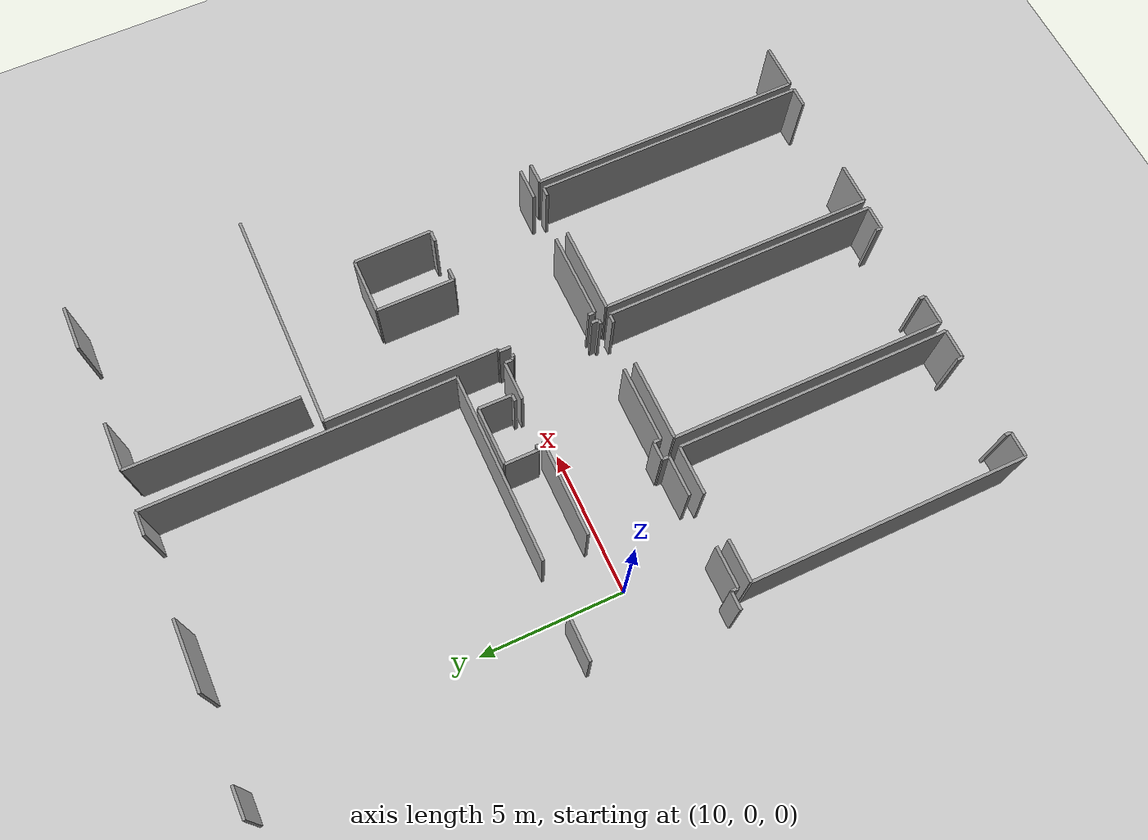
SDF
<sdf version="1.6">
 <world name="default">
  <model name="ground_plane">
   <static>1</static>
   <link name="link">
    <collision name="collision">
     <geometry><plane><normal>0 0 1</normal><size>100 100</size></plane></geometry>
     <surface><friction><ode><mu>100</mu><mu2>50</mu2></ode></friction></surface>
    </collision>
    <visual name="visual">
     <cast_shadows>0</cast_shadows>
     <geometry><plane><normal>0 0 1</normal><size>100 100</size></plane></geometry>
     <material>
      <script><uri>file://media/materials/scripts/gazebo.material</uri><name>Gazebo/Grey</name></script>
     </material>
    </visual>
   </link>
  </model>
  <model name="0510030968_A-40">
   <static>1</static>
   <link name="Wall_44">
    <collision name="Wall_44_Collision">
     <geometry><box><size>3.30614733793 0.1 2.5</size></box></geometry>
     <pose>1.65307366897 0 1.25 0 0 0</pose>
    </collision>
    <visual name="Wall_44_Visual">
     <pose>1.65307366897 0 1.25 0 0 0</pose>
     <geometry><box><size>3.30614733793 0.1 2.5</size></box></geometry>
     <material>
      <script><uri>file://media/materials/scripts/gazebo.material</uri><name>Gazebo/Grey</name></script>
      <ambient>1 1 1 1</ambient>
     </material>
    </visual>
    <pose>50.3161959932 -12.2775258203 0 0 0 0.0</pose>
   </link>
   <link name="Wall_45">
    <collision name="Wall_45_Collision">
     <geometry><box><size>1.36196755466 0.1 2.5</size></box></geometry>
     <pose>0.680983777329 0 1.25 0 0 0</pose>
    </collision>
    <visual name="Wall_45_Visual">
     <pose>0.680983777329 0 1.25 0 0 0</pose>
     <geometry><box><size>1.36196755466 0.1 2.5</size></box></geometry>
     <material>
      <script><uri>file://media/materials/scripts/gazebo.material</uri><name>Gazebo/Grey</name></script>
      <ambient>1 1 1 1</ambient>
     </material>
    </visual>
    <pose>55.198622915 -12.2775258203 0 0 0 0.0</pose>
   </link>
   <link name="Wall_46">
    <collision name="Wall_46_Collision">
     <geometry><box><size>0.280625531969 0.1 2.5</size></box></geometry>
     <pose>0.140312765984 0 1.25 0 0 0</pose>
    </collision>
    <visual name="Wall_46_Visual">
     <pose>0.140312765984 0 1.25 0 0 0</pose>
     <geometry><box><size>0.280625531969 0.1 2.5</size></box></geometry>
     <material>
      <script><uri>file://media/materials/scripts/gazebo.material</uri><name>Gazebo/Grey</name></script>
      <ambient>1 1 1 1</ambient>
     </material>
    </visual>
    <pose>56.5605904697 -12.2775258203 0 0 0 -1.57079632679</pose>
   </link>
   <link name="Wall_47">
    <collision name="Wall_47_Collision">
     <geometry><box><size>0.137327387985 0.1 2.5</size></box></geometry>
     <pose>0.0686636939924 0 1.25 0 0 0</pose>
    </collision>
    <visual name="Wall_47_Visual">
     <pose>0.0686636939924 0 1.25 0 0 0</pose>
     <geometry><box><size>0.137327387985 0.1 2.5</size></box></geometry>
     <material>
      <script><uri>file://media/materials/scripts/gazebo.material</uri><name>Gazebo/Grey</name></script>
      <ambient>1 1 1 1</ambient>
     </material>
    </visual>
    <pose>56.5605904697 -12.5581513523 0 0 0 0.0</pose>
   </link>
   <link name="Wall_48">
    <collision name="Wall_48_Collision">
     <geometry><box><size>0.10988731786 0.1 2.5</size></box></geometry>
     <pose>0.0549436589301 0 1.25 0 0 0</pose>
    </collision>
    <visual name="Wall_48_Visual">
     <pose>0.0549436589301 0 1.25 0 0 0</pose>
     <geometry><box><size>0.10988731786 0.1 2.5</size></box></geometry>
     <material>
      <script><uri>file://media/materials/scripts/gazebo.material</uri><name>Gazebo/Grey</name></script>
      <ambient>1 1 1 1</ambient>
     </material>
    </visual>
    <pose>56.6979178576 -12.5581513523 0 0 0 -1.57079632679</pose>
   </link>
   <link name="Wall_49">
    <collision name="Wall_49_Collision">
     <geometry><box><size>0.251025826696 0.1 2.5</size></box></geometry>
     <pose>0.125512913348 0 1.25 0 0 0</pose>
    </collision>
    <visual name="Wall_49_Visual">
     <pose>0.125512913348 0 1.25 0 0 0</pose>
     <geometry><box><size>0.251025826696 0.1 2.5</size></box></geometry>
     <material>
      <script><uri>file://media/materials/scripts/gazebo.material</uri><name>Gazebo/Grey</name></script>
      <ambient>1 1 1 1</ambient>
     </material>
    </visual>
    <pose>56.6979178576 -15.4015015816 0 0 0 -1.57079632679</pose>
   </link>
   <link name="Wall_50">
    <collision name="Wall_50_Collision">
     <geometry><box><size>0.156001880153 0.1 2.5</size></box></geometry>
     <pose>0.0780009400765 0 1.25 0 0 0</pose>
    </collision>
    <visual name="Wall_50_Visual">
     <pose>0.0780009400765 0 1.25 0 0 0</pose>
     <geometry><box><size>0.156001880153 0.1 2.5</size></box></geometry>
     <material>
      <script><uri>file://media/materials/scripts/gazebo.material</uri><name>Gazebo/Grey</name></script>
      <ambient>1 1 1 1</ambient>
     </material>
    </visual>
    <pose>56.6979178576 -15.6525274083 0 0 0 3.14159265359</pose>
   </link>
   <link name="Wall_51">
    <collision name="Wall_51_Collision">
     <geometry><box><size>2.60718777392 0.1 2.5</size></box></geometry>
     <pose>1.30359388696 0 1.25 0 0 0</pose>
    </collision>
    <visual name="Wall_51_Visual">
     <pose>1.30359388696 0 1.25 0 0 0</pose>
     <geometry><box><size>2.60718777392 0.1 2.5</size></box></geometry>
     <material>
      <script><uri>file://media/materials/scripts/gazebo.material</uri><name>Gazebo/Grey</name></script>
      <ambient>1 1 1 1</ambient>
     </material>
    </visual>
    <pose>54.7851163027 -15.6525274083 0 0 0 3.14159265359</pose>
   </link>
   <link name="Wall_52">
    <collision name="Wall_52_Collision">
     <geometry><box><size>0.252677312398 0.1 2.5</size></box></geometry>
     <pose>0.126338656199 0 1.25 0 0 0</pose>
    </collision>
    <visual name="Wall_52_Visual">
     <pose>0.126338656199 0 1.25 0 0 0</pose>
     <geometry><box><size>0.252677312398 0.1 2.5</size></box></geometry>
     <material>
      <script><uri>file://media/materials/scripts/gazebo.material</uri><name>Gazebo/Grey</name></script>
      <ambient>1 1 1 1</ambient>
     </material>
    </visual>
    <pose>52.1779285288 -15.6525274083 0 0 0 1.57079632679</pose>
   </link>
   <link name="Wall_53">
    <collision name="Wall_53_Collision">
     <geometry><box><size>0.619053063506 0.1 2.5</size></box></geometry>
     <pose>0.309526531753 0 1.25 0 0 0</pose>
    </collision>
    <visual name="Wall_53_Visual">
     <pose>0.309526531753 0 1.25 0 0 0</pose>
     <geometry><box><size>0.619053063506 0.1 2.5</size></box></geometry>
     <material>
      <script><uri>file://media/materials/scripts/gazebo.material</uri><name>Gazebo/Grey</name></script>
      <ambient>1 1 1 1</ambient>
     </material>
    </visual>
    <pose>52.1779285288 -15.3998500959 0 0 0 3.14159265359</pose>
   </link>
   <link name="Wall_54">
    <collision name="Wall_54_Collision">
     <geometry><box><size>0.233748745506 0.1 2.5</size></box></geometry>
     <pose>0.116874372753 0 1.25 0 0 0</pose>
    </collision>
    <visual name="Wall_54_Visual">
     <pose>0.116874372753 0 1.25 0 0 0</pose>
     <geometry><box><size>0.233748745506 0.1 2.5</size></box></geometry>
     <material>
      <script><uri>file://media/materials/scripts/gazebo.material</uri><name>Gazebo/Grey</name></script>
      <ambient>1 1 1 1</ambient>
     </material>
    </visual>
    <pose>51.5588754653 -15.3998500959 0 0 0 -1.57079632679</pose>
   </link>
   <link name="Wall_55">
    <collision name="Wall_55_Collision">
     <geometry><box><size>1.40211136095 0.1 2.5</size></box></geometry>
     <pose>0.701055680476 0 1.25 0 0 0</pose>
    </collision>
    <visual name="Wall_55_Visual">
     <pose>0.701055680476 0 1.25 0 0 0</pose>
     <geometry><box><size>1.40211136095 0.1 2.5</size></box></geometry>
     <material>
      <script><uri>file://media/materials/scripts/gazebo.material</uri><name>Gazebo/Grey</name></script>
      <ambient>1 1 1 1</ambient>
     </material>
    </visual>
    <pose>51.5588754653 -15.6335988414 0 0 0 3.14159265359</pose>
   </link>
   <link name="Wall_56">
    <collision name="Wall_56_Collision">
     <geometry><box><size>1.40249247304 0.1 2.5</size></box></geometry>
     <pose>0.701246236518 0 1.25 0 0 0</pose>
    </collision>
    <visual name="Wall_56_Visual">
     <pose>0.701246236518 0 1.25 0 0 0</pose>
     <geometry><box><size>1.40249247304 0.1 2.5</size></box></geometry>
     <material>
      <script><uri>file://media/materials/scripts/gazebo.material</uri><name>Gazebo/Grey</name></script>
      <ambient>1 1 1 1</ambient>
     </material>
    </visual>
    <pose>48.3854821703 -15.6335988414 0 0 0 3.14159265359</pose>
   </link>
   <link name="Wall_57">
    <collision name="Wall_57_Collision">
     <geometry><box><size>0.231589110357 0.1 2.5</size></box></geometry>
     <pose>0.115794555179 0 1.25 0 0 0</pose>
    </collision>
    <visual name="Wall_57_Visual">
     <pose>0.115794555179 0 1.25 0 0 0</pose>
     <geometry><box><size>0.231589110357 0.1 2.5</size></box></geometry>
     <material>
      <script><uri>file://media/materials/scripts/gazebo.material</uri><name>Gazebo/Grey</name></script>
      <ambient>1 1 1 1</ambient>
     </material>
    </visual>
    <pose>46.9829896973 -15.6335988414 0 0 0 1.57079632679</pose>
   </link>
   <link name="Wall_58">
    <collision name="Wall_58_Collision">
     <geometry><box><size>0.628453828271 0.1 2.5</size></box></geometry>
     <pose>0.314226914135 0 1.25 0 0 0</pose>
    </collision>
    <visual name="Wall_58_Visual">
     <pose>0.314226914135 0 1.25 0 0 0</pose>
     <geometry><box><size>0.628453828271 0.1 2.5</size></box></geometry>
     <material>
      <script><uri>file://media/materials/scripts/gazebo.material</uri><name>Gazebo/Grey</name></script>
      <ambient>1 1 1 1</ambient>
     </material>
    </visual>
    <pose>46.9829896973 -15.4020097311 0 0 0 3.14159265359</pose>
   </link>
   <link name="Wall_166">
    <collision name="Wall_166_Collision">
     <geometry><box><size>1.03205152635 0.1 2.5</size></box></geometry>
     <pose>0.516025763177 0 1.25 0 0 0</pose>
    </collision>
    <visual name="Wall_166_Visual">
     <pose>0.516025763177 0 1.25 0 0 0</pose>
     <geometry><box><size>1.03205152635 0.1 2.5</size></box></geometry>
     <material>
      <script><uri>file://media/materials/scripts/gazebo.material</uri><name>Gazebo/Grey</name></script>
      <ambient>1 1 1 1</ambient>
     </material>
    </visual>
    <pose>51.7197047652 -25.694576775 0 0 0 3.14159265359</pose>
   </link>
   <link name="Wall_167">
    <collision name="Wall_167_Collision">
     <geometry><box><size>0.20021088202 0.1 2.5</size></box></geometry>
     <pose>0.10010544101 0 1.25 0 0 0</pose>
    </collision>
    <visual name="Wall_167_Visual">
     <pose>0.10010544101 0 1.25 0 0 0</pose>
     <geometry><box><size>0.20021088202 0.1 2.5</size></box></geometry>
     <material>
      <script><uri>file://media/materials/scripts/gazebo.material</uri><name>Gazebo/Grey</name></script>
      <ambient>1 1 1 1</ambient>
     </material>
    </visual>
    <pose>50.6876532388 -25.694576775 0 0 0 1.57079632679</pose>
   </link>
   <link name="Wall_168">
    <collision name="Wall_168_Collision">
     <geometry><box><size>0.210627945679 0.1 2.5</size></box></geometry>
     <pose>0.105313972839 0 1.25 0 0 0</pose>
    </collision>
    <visual name="Wall_168_Visual">
     <pose>0.105313972839 0 1.25 0 0 0</pose>
     <geometry><box><size>0.210627945679 0.1 2.5</size></box></geometry>
     <material>
      <script><uri>file://media/materials/scripts/gazebo.material</uri><name>Gazebo/Grey</name></script>
      <ambient>1 1 1 1</ambient>
     </material>
    </visual>
    <pose>47.8548471105 -25.494365893 0 0 0 -1.57079632679</pose>
   </link>
   <link name="Wall_169">
    <collision name="Wall_169_Collision">
     <geometry><box><size>0.871603338542 0.1 2.5</size></box></geometry>
     <pose>0.435801669271 0 1.25 0 0 0</pose>
    </collision>
    <visual name="Wall_169_Visual">
     <pose>0.435801669271 0 1.25 0 0 0</pose>
     <geometry><box><size>0.871603338542 0.1 2.5</size></box></geometry>
     <material>
      <script><uri>file://media/materials/scripts/gazebo.material</uri><name>Gazebo/Grey</name></script>
      <ambient>1 1 1 1</ambient>
     </material>
    </visual>
    <pose>47.8548471105 -25.7049938387 0 0 0 3.14159265359</pose>
   </link>
   <link name="Wall_170">
    <collision name="Wall_170_Collision">
     <geometry><box><size>9.63565684668 0.1 2.5</size></box></geometry>
     <pose>4.81782842334 0 1.25 0 0 0</pose>
    </collision>
    <visual name="Wall_170_Visual">
     <pose>4.81782842334 0 1.25 0 0 0</pose>
     <geometry><box><size>9.63565684668 0.1 2.5</size></box></geometry>
     <material>
      <script><uri>file://media/materials/scripts/gazebo.material</uri><name>Gazebo/Grey</name></script>
      <ambient>1 1 1 1</ambient>
     </material>
    </visual>
    <pose>46.983243772 -25.7049938387 0 0 0 1.57079632679</pose>
   </link>
   <link name="Wall_171">
    <collision name="Wall_171_Collision">
     <geometry><box><size>1.44924222214 0.1 2.5</size></box></geometry>
     <pose>0.724621111069 0 1.25 0 0 0</pose>
    </collision>
    <visual name="Wall_171_Visual">
     <pose>0.724621111069 0 1.25 0 0 0</pose>
     <geometry><box><size>1.44924222214 0.1 2.5</size></box></geometry>
     <material>
      <script><uri>file://media/materials/scripts/gazebo.material</uri><name>Gazebo/Grey</name></script>
      <ambient>1 1 1 1</ambient>
     </material>
    </visual>
    <pose>46.983243772 -16.069336992 0 0 0 0.0</pose>
   </link>
   <link name="Wall_172">
    <collision name="Wall_172_Collision">
     <geometry><box><size>1.69061320934 0.1 2.5</size></box></geometry>
     <pose>0.845306604672 0 1.25 0 0 0</pose>
    </collision>
    <visual name="Wall_172_Visual">
     <pose>0.845306604672 0 1.25 0 0 0</pose>
     <geometry><box><size>1.69061320934 0.1 2.5</size></box></geometry>
     <material>
      <script><uri>file://media/materials/scripts/gazebo.material</uri><name>Gazebo/Grey</name></script>
      <ambient>1 1 1 1</ambient>
     </material>
    </visual>
    <pose>50.0184204174 -16.069336992 0 0 0 0.0</pose>
   </link>
   <link name="Wall_173">
    <collision name="Wall_173_Collision">
     <geometry><box><size>9.62524569836 0.1 2.5</size></box></geometry>
     <pose>4.81262284918 0 1.25 0 0 0</pose>
    </collision>
    <visual name="Wall_173_Visual">
     <pose>4.81262284918 0 1.25 0 0 0</pose>
     <geometry><box><size>9.62524569836 0.1 2.5</size></box></geometry>
     <material>
      <script><uri>file://media/materials/scripts/gazebo.material</uri><name>Gazebo/Grey</name></script>
      <ambient>1 1 1 1</ambient>
     </material>
    </visual>
    <pose>51.7090336268 -16.069336992 0 0 0 -1.56968766517</pose>
   </link>
   <link name="Wall_174">
    <collision name="Wall_174_Collision">
     <geometry><box><size>0.859534789181 0.1 2.5</size></box></geometry>
     <pose>0.429767394591 0 1.25 0 0 0</pose>
    </collision>
    <visual name="Wall_174_Visual">
     <pose>0.429767394591 0 1.25 0 0 0</pose>
     <geometry><box><size>0.859534789181 0.1 2.5</size></box></geometry>
     <material>
      <script><uri>file://media/materials/scripts/gazebo.material</uri><name>Gazebo/Grey</name></script>
      <ambient>1 1 1 1</ambient>
     </material>
    </visual>
    <pose>56.7238334794 -25.716681276 0 0 0 3.14159265359</pose>
   </link>
   <link name="Wall_175">
    <collision name="Wall_175_Collision">
     <geometry><box><size>0.199702732574 0.1 2.5</size></box></geometry>
     <pose>0.0998513662868 0 1.25 0 0 0</pose>
    </collision>
    <visual name="Wall_175_Visual">
     <pose>0.0998513662868 0 1.25 0 0 0</pose>
     <geometry><box><size>0.199702732574 0.1 2.5</size></box></geometry>
     <material>
      <script><uri>file://media/materials/scripts/gazebo.material</uri><name>Gazebo/Grey</name></script>
      <ambient>1 1 1 1</ambient>
     </material>
    </visual>
    <pose>55.8642986902 -25.716681276 0 0 0 1.57079632679</pose>
   </link>
   <link name="Wall_176">
    <collision name="Wall_176_Collision">
     <geometry><box><size>0.192080490872 0.1 2.5</size></box></geometry>
     <pose>0.0960402454362 0 1.25 0 0 0</pose>
    </collision>
    <visual name="Wall_176_Visual">
     <pose>0.0960402454362 0 1.25 0 0 0</pose>
     <geometry><box><size>0.192080490872 0.1 2.5</size></box></geometry>
     <material>
      <script><uri>file://media/materials/scripts/gazebo.material</uri><name>Gazebo/Grey</name></script>
      <ambient>1 1 1 1</ambient>
     </material>
    </visual>
    <pose>53.0660467243 -25.5169785434 0 0 0 -1.57079632679</pose>
   </link>
   <link name="Wall_177">
    <collision name="Wall_177_Collision">
     <geometry><box><size>1.01909371546 0.1 2.5</size></box></geometry>
     <pose>0.509546857731 0 1.25 0 0 0</pose>
    </collision>
    <visual name="Wall_177_Visual">
     <pose>0.509546857731 0 1.25 0 0 0</pose>
     <geometry><box><size>1.01909371546 0.1 2.5</size></box></geometry>
     <material>
      <script><uri>file://media/materials/scripts/gazebo.material</uri><name>Gazebo/Grey</name></script>
      <ambient>1 1 1 1</ambient>
     </material>
    </visual>
    <pose>53.0660467243 -25.7090590343 0 0 0 3.14159265359</pose>
   </link>
   <link name="Wall_178">
    <collision name="Wall_178_Collision">
     <geometry><box><size>9.64607391034 0.1 2.5</size></box></geometry>
     <pose>4.82303695517 0 1.25 0 0 0</pose>
    </collision>
    <visual name="Wall_178_Visual">
     <pose>4.82303695517 0 1.25 0 0 0</pose>
     <geometry><box><size>9.64607391034 0.1 2.5</size></box></geometry>
     <material>
      <script><uri>file://media/materials/scripts/gazebo.material</uri><name>Gazebo/Grey</name></script>
      <ambient>1 1 1 1</ambient>
     </material>
    </visual>
    <pose>52.0469530089 -25.7090590343 0 0 0 1.57079632679</pose>
   </link>
   <link name="Wall_179">
    <collision name="Wall_179_Collision">
     <geometry><box><size>2.79621936812 0.1 2.5</size></box></geometry>
     <pose>1.39810968406 0 1.25 0 0 0</pose>
    </collision>
    <visual name="Wall_179_Visual">
     <pose>1.39810968406 0 1.25 0 0 0</pose>
     <geometry><box><size>2.79621936812 0.1 2.5</size></box></geometry>
     <material>
      <script><uri>file://media/materials/scripts/gazebo.material</uri><name>Gazebo/Grey</name></script>
      <ambient>1 1 1 1</ambient>
     </material>
    </visual>
    <pose>52.0469530089 -16.0629851239 0 0 0 0.0</pose>
   </link>
   <link name="Wall_180">
    <collision name="Wall_180_Collision">
     <geometry><box><size>0.317466366858 0.1 2.5</size></box></geometry>
     <pose>0.158733183429 0 1.25 0 0 0</pose>
    </collision>
    <visual name="Wall_180_Visual">
     <pose>0.158733183429 0 1.25 0 0 0</pose>
     <geometry><box><size>0.317466366858 0.1 2.5</size></box></geometry>
     <material>
      <script><uri>file://media/materials/scripts/gazebo.material</uri><name>Gazebo/Grey</name></script>
      <ambient>1 1 1 1</ambient>
     </material>
    </visual>
    <pose>56.4155138026 -16.0629851239 0 0 0 0.0</pose>
   </link>
   <link name="Wall_181">
    <collision name="Wall_181_Collision">
     <geometry><box><size>9.65370048519 0.1 2.5</size></box></geometry>
     <pose>4.8268502426 0 1.25 0 0 0</pose>
    </collision>
    <visual name="Wall_181_Visual">
     <pose>4.8268502426 0 1.25 0 0 0</pose>
     <geometry><box><size>9.65370048519 0.1 2.5</size></box></geometry>
     <material>
      <script><uri>file://media/materials/scripts/gazebo.material</uri><name>Gazebo/Grey</name></script>
      <ambient>1 1 1 1</ambient>
     </material>
    </visual>
    <pose>56.7329801695 -16.0629851239 0 0 0 -1.57174380713</pose>
   </link>
   <link name="Wall_211">
    <collision name="Wall_211_Collision">
     <geometry><box><size>6.60848355501 0.1 2.5</size></box></geometry>
     <pose>3.30424177751 0 1.25 0 0 0</pose>
    </collision>
    <visual name="Wall_211_Visual">
     <pose>3.30424177751 0 1.25 0 0 0</pose>
     <geometry><box><size>6.60848355501 0.1 2.5</size></box></geometry>
     <material>
      <script><uri>file://media/materials/scripts/gazebo.material</uri><name>Gazebo/Grey</name></script>
      <ambient>1 1 1 1</ambient>
     </material>
    </visual>
    <pose>56.7440324199 -10.6910832476 0 0 0 3.14159265359</pose>
   </link>
   <link name="Wall_212">
    <collision name="Wall_212_Collision">
     <geometry><box><size>1.54655284119 0.1 2.5</size></box></geometry>
     <pose>0.773276420595 0 1.25 0 0 0</pose>
    </collision>
    <visual name="Wall_212_Visual">
     <pose>0.773276420595 0 1.25 0 0 0</pose>
     <geometry><box><size>1.54655284119 0.1 2.5</size></box></geometry>
     <material>
      <script><uri>file://media/materials/scripts/gazebo.material</uri><name>Gazebo/Grey</name></script>
      <ambient>1 1 1 1</ambient>
     </material>
    </visual>
    <pose>48.3662995287 -10.6910832476 0 0 0 3.14159265359</pose>
   </link>
   <link name="Wall_214">
    <collision name="Wall_214_Collision">
     <geometry><box><size>1.04132525376 0.1 2.5</size></box></geometry>
     <pose>0.520662626879 0 1.25 0 0 0</pose>
    </collision>
    <visual name="Wall_214_Visual">
     <pose>0.520662626879 0 1.25 0 0 0</pose>
     <geometry><box><size>1.04132525376 0.1 2.5</size></box></geometry>
     <material>
      <script><uri>file://media/materials/scripts/gazebo.material</uri><name>Gazebo/Grey</name></script>
      <ambient>1 1 1 1</ambient>
     </material>
    </visual>
    <pose>46.8197466875 -0.0141011471474 0 0 0 0.0</pose>
   </link>
   <link name="Wall_215">
    <collision name="Wall_215_Collision">
     <geometry><box><size>2.40557948093 0.1 2.5</size></box></geometry>
     <pose>1.20278974046 0 1.25 0 0 0</pose>
    </collision>
    <visual name="Wall_215_Visual">
     <pose>1.20278974046 0 1.25 0 0 0</pose>
     <geometry><box><size>2.40557948093 0.1 2.5</size></box></geometry>
     <material>
      <script><uri>file://media/materials/scripts/gazebo.material</uri><name>Gazebo/Grey</name></script>
      <ambient>1 1 1 1</ambient>
     </material>
    </visual>
    <pose>50.6619916918 -0.0141011471474 0 0 0 0.0</pose>
   </link>
   <link name="Wall_216">
    <collision name="Wall_216_Collision">
     <geometry><box><size>0.834889541014 0.1 2.5</size></box></geometry>
     <pose>0.417444770507 0 1.25 0 0 0</pose>
    </collision>
    <visual name="Wall_216_Visual">
     <pose>0.417444770507 0 1.25 0 0 0</pose>
     <geometry><box><size>0.834889541014 0.1 2.5</size></box></geometry>
     <material>
      <script><uri>file://media/materials/scripts/gazebo.material</uri><name>Gazebo/Grey</name></script>
      <ambient>1 1 1 1</ambient>
     </material>
    </visual>
    <pose>55.8521031035 -0.0141011471474 0 0 0 0.0</pose>
   </link>
   <link name="Wall_217">
    <collision name="Wall_217_Collision">
     <geometry><box><size>10.6771344615 0.1 2.5</size></box></geometry>
     <pose>5.33856723075 0 1.25 0 0 0</pose>
    </collision>
    <visual name="Wall_217_Visual">
     <pose>5.33856723075 0 1.25 0 0 0</pose>
     <geometry><box><size>10.6771344615 0.1 2.5</size></box></geometry>
     <material>
      <script><uri>file://media/materials/scripts/gazebo.material</uri><name>Gazebo/Grey</name></script>
      <ambient>1 1 1 1</ambient>
     </material>
    </visual>
    <pose>56.6869926445 -0.0141011471474 0 0 0 -1.56545406507</pose>
   </link>
   <link name="Wall_233">
    <collision name="Wall_233_Collision">
     <geometry><box><size>0.232478371889 0.1 2.5</size></box></geometry>
     <pose>0.116239185945 0 1.25 0 0 0</pose>
    </collision>
    <visual name="Wall_233_Visual">
     <pose>0.116239185945 0 1.25 0 0 0</pose>
     <geometry><box><size>0.232478371889 0.1 2.5</size></box></geometry>
     <material>
      <script><uri>file://media/materials/scripts/gazebo.material</uri><name>Gazebo/Grey</name></script>
      <ambient>1 1 1 1</ambient>
     </material>
    </visual>
    <pose>55.4524435637 -12.0426337386 0 0 0 3.14159265359</pose>
   </link>
   <link name="Wall_234">
    <collision name="Wall_234_Collision">
     <geometry><box><size>0.182552688746 0.1 2.5</size></box></geometry>
     <pose>0.0912763443729 0 1.25 0 0 0</pose>
    </collision>
    <visual name="Wall_234_Visual">
     <pose>0.0912763443729 0 1.25 0 0 0</pose>
     <geometry><box><size>0.182552688746 0.1 2.5</size></box></geometry>
     <material>
      <script><uri>file://media/materials/scripts/gazebo.material</uri><name>Gazebo/Grey</name></script>
      <ambient>1 1 1 1</ambient>
     </material>
    </visual>
    <pose>53.611037006 -12.0426337386 0 0 0 3.14159265359</pose>
   </link>
   <link name="Wall_235">
    <collision name="Wall_235_Collision">
     <geometry><box><size>1.16505964404 0.1 2.5</size></box></geometry>
     <pose>0.582529822021 0 1.25 0 0 0</pose>
    </collision>
    <visual name="Wall_235_Visual">
     <pose>0.582529822021 0 1.25 0 0 0</pose>
     <geometry><box><size>1.16505964404 0.1 2.5</size></box></geometry>
     <material>
      <script><uri>file://media/materials/scripts/gazebo.material</uri><name>Gazebo/Grey</name></script>
      <ambient>1 1 1 1</ambient>
     </material>
    </visual>
    <pose>53.4284843172 -12.0426337386 0 0 0 1.57079632679</pose>
   </link>
   <link name="Wall_236">
    <collision name="Wall_236_Collision">
     <geometry><box><size>2.03653594522 0.1 2.5</size></box></geometry>
     <pose>1.01826797261 0 1.25 0 0 0</pose>
    </collision>
    <visual name="Wall_236_Visual">
     <pose>1.01826797261 0 1.25 0 0 0</pose>
     <geometry><box><size>2.03653594522 0.1 2.5</size></box></geometry>
     <material>
      <script><uri>file://media/materials/scripts/gazebo.material</uri><name>Gazebo/Grey</name></script>
      <ambient>1 1 1 1</ambient>
     </material>
    </visual>
    <pose>53.4284843172 -10.8775740945 0 0 0 0.0</pose>
   </link>
   <link name="Wall_237">
    <collision name="Wall_237_Collision">
     <geometry><box><size>1.16512752415 0.1 2.5</size></box></geometry>
     <pose>0.582563762074 0 1.25 0 0 0</pose>
    </collision>
    <visual name="Wall_237_Visual">
     <pose>0.582563762074 0 1.25 0 0 0</pose>
     <geometry><box><size>1.16512752415 0.1 2.5</size></box></geometry>
     <material>
      <script><uri>file://media/materials/scripts/gazebo.material</uri><name>Gazebo/Grey</name></script>
      <ambient>1 1 1 1</ambient>
     </material>
    </visual>
    <pose>55.4650202625 -10.8775740945 0 0 0 -1.58159080447</pose>
   </link>
   <link name="Wall_238">
    <collision name="Wall_238_Collision">
     <geometry><box><size>0.693751032179 0.1 2.5</size></box></geometry>
     <pose>0.346875516089 0 1.25 0 0 0</pose>
    </collision>
    <visual name="Wall_238_Visual">
     <pose>0.346875516089 0 1.25 0 0 0</pose>
     <geometry><box><size>0.693751032179 0.1 2.5</size></box></geometry>
     <material>
      <script><uri>file://media/materials/scripts/gazebo.material</uri><name>Gazebo/Grey</name></script>
      <ambient>1 1 1 1</ambient>
     </material>
    </visual>
    <pose>61.9373197657 -25.727225377 0 0 0 3.14159265359</pose>
   </link>
   <link name="Wall_239">
    <collision name="Wall_239_Collision">
     <geometry><box><size>1.43374366401 0.1 2.5</size></box></geometry>
     <pose>0.716871832006 0 1.25 0 0 0</pose>
    </collision>
    <visual name="Wall_239_Visual">
     <pose>0.716871832006 0 1.25 0 0 0</pose>
     <geometry><box><size>1.43374366401 0.1 2.5</size></box></geometry>
     <material>
      <script><uri>file://media/materials/scripts/gazebo.material</uri><name>Gazebo/Grey</name></script>
      <ambient>1 1 1 1</ambient>
     </material>
    </visual>
    <pose>58.449636038 -25.727225377 0 0 0 3.14159265359</pose>
   </link>
   <link name="Wall_240">
    <collision name="Wall_240_Collision">
     <geometry><box><size>9.63705425766 0.1 2.5</size></box></geometry>
     <pose>4.81852712883 0 1.25 0 0 0</pose>
    </collision>
    <visual name="Wall_240_Visual">
     <pose>4.81852712883 0 1.25 0 0 0</pose>
     <geometry><box><size>9.63705425766 0.1 2.5</size></box></geometry>
     <material>
      <script><uri>file://media/materials/scripts/gazebo.material</uri><name>Gazebo/Grey</name></script>
      <ambient>1 1 1 1</ambient>
     </material>
    </visual>
    <pose>57.0158923739 -25.727225377 0 0 0 1.57079632679</pose>
   </link>
   <link name="Wall_241">
    <collision name="Wall_241_Collision">
     <geometry><box><size>3.01916993788 0.1 2.5</size></box></geometry>
     <pose>1.50958496894 0 1.25 0 0 0</pose>
    </collision>
    <visual name="Wall_241_Visual">
     <pose>1.50958496894 0 1.25 0 0 0</pose>
     <geometry><box><size>3.01916993788 0.1 2.5</size></box></geometry>
     <material>
      <script><uri>file://media/materials/scripts/gazebo.material</uri><name>Gazebo/Grey</name></script>
      <ambient>1 1 1 1</ambient>
     </material>
    </visual>
    <pose>57.0158923739 -16.0901711193 0 0 0 0.0</pose>
   </link>
   <link name="Wall_242">
    <collision name="Wall_242_Collision">
     <geometry><box><size>0.324072309666 0.1 2.5</size></box></geometry>
     <pose>0.162036154833 0 1.25 0 0 0</pose>
    </collision>
    <visual name="Wall_242_Visual">
     <pose>0.162036154833 0 1.25 0 0 0</pose>
     <geometry><box><size>0.324072309666 0.1 2.5</size></box></geometry>
     <material>
      <script><uri>file://media/materials/scripts/gazebo.material</uri><name>Gazebo/Grey</name></script>
      <ambient>1 1 1 1</ambient>
     </material>
    </visual>
    <pose>61.6133744934 -16.0901711193 0 0 0 0.0</pose>
   </link>
   <link name="Wall_243">
    <collision name="Wall_243_Collision">
     <geometry><box><size>9.63705425849 0.1 2.5</size></box></geometry>
     <pose>4.81852712925 0 1.25 0 0 0</pose>
    </collision>
    <visual name="Wall_243_Visual">
     <pose>4.81852712925 0 1.25 0 0 0</pose>
     <geometry><box><size>9.63705425849 0.1 2.5</size></box></geometry>
     <material>
      <script><uri>file://media/materials/scripts/gazebo.material</uri><name>Gazebo/Grey</name></script>
      <ambient>1 1 1 1</ambient>
     </material>
    </visual>
    <pose>61.9374468031 -16.0901711193 0 0 0 -1.57080950897</pose>
   </link>
   <link name="Wall_245">
    <collision name="Wall_245_Collision">
     <geometry><box><size>1.57539032229 0.1 2.5</size></box></geometry>
     <pose>0.787695161147 0 1.25 0 0 0</pose>
    </collision>
    <visual name="Wall_245_Visual">
     <pose>0.787695161147 0 1.25 0 0 0</pose>
     <geometry><box><size>1.57539032229 0.1 2.5</size></box></geometry>
     <material>
      <script><uri>file://media/materials/scripts/gazebo.material</uri><name>Gazebo/Grey</name></script>
      <ambient>1 1 1 1</ambient>
     </material>
    </visual>
    <pose>63.7836807805 -25.727225377 0 0 0 3.14159265359</pose>
   </link>
   <link name="Wall_246">
    <collision name="Wall_246_Collision">
     <geometry><box><size>9.65280689051 0.1 2.5</size></box></geometry>
     <pose>4.82640344525 0 1.25 0 0 0</pose>
    </collision>
    <visual name="Wall_246_Visual">
     <pose>4.82640344525 0 1.25 0 0 0</pose>
     <geometry><box><size>9.65280689051 0.1 2.5</size></box></geometry>
     <material>
      <script><uri>file://media/materials/scripts/gazebo.material</uri><name>Gazebo/Grey</name></script>
      <ambient>1 1 1 1</ambient>
     </material>
    </visual>
    <pose>62.2082904582 -25.727225377 0 0 0 1.57079632679</pose>
   </link>
   <link name="Wall_247">
    <collision name="Wall_247_Collision">
     <geometry><box><size>0.725383335239 0.1 2.5</size></box></geometry>
     <pose>0.362691667619 0 1.25 0 0 0</pose>
    </collision>
    <visual name="Wall_247_Visual">
     <pose>0.362691667619 0 1.25 0 0 0</pose>
     <geometry><box><size>0.725383335239 0.1 2.5</size></box></geometry>
     <material>
      <script><uri>file://media/materials/scripts/gazebo.material</uri><name>Gazebo/Grey</name></script>
      <ambient>1 1 1 1</ambient>
     </material>
    </visual>
    <pose>62.2082904582 -16.0744184865 0 0 0 0.0</pose>
   </link>
   <link name="Wall_250">
    <collision name="Wall_250_Collision">
     <geometry><box><size>0.231970222442 0.1 2.5</size></box></geometry>
     <pose>0.115985111221 0 1.25 0 0 0</pose>
    </collision>
    <visual name="Wall_250_Visual">
     <pose>0.115985111221 0 1.25 0 0 0</pose>
     <geometry><box><size>0.231970222442 0.1 2.5</size></box></geometry>
     <material>
      <script><uri>file://media/materials/scripts/gazebo.material</uri><name>Gazebo/Grey</name></script>
      <ambient>1 1 1 1</ambient>
     </material>
    </visual>
    <pose>57.0000127037 -15.6642148456 0 0 0 1.57079632679</pose>
   </link>
   <link name="Wall_251">
    <collision name="Wall_251_Collision">
     <geometry><box><size>0.408806229912 0.1 2.5</size></box></geometry>
     <pose>0.204403114956 0 1.25 0 0 0</pose>
    </collision>
    <visual name="Wall_251_Visual">
     <pose>0.204403114956 0 1.25 0 0 0</pose>
     <geometry><box><size>0.408806229912 0.1 2.5</size></box></geometry>
     <material>
      <script><uri>file://media/materials/scripts/gazebo.material</uri><name>Gazebo/Grey</name></script>
      <ambient>1 1 1 1</ambient>
     </material>
    </visual>
    <pose>57.0000127037 -12.6705794174 0 0 0 1.57079632679</pose>
   </link>
   <link name="Wall_252">
    <collision name="Wall_252_Collision">
     <geometry><box><size>0.0772387159063 0.1 2.5</size></box></geometry>
     <pose>0.0386193579532 0 1.25 0 0 0</pose>
    </collision>
    <visual name="Wall_252_Visual">
     <pose>0.0386193579532 0 1.25 0 0 0</pose>
     <geometry><box><size>0.0772387159063 0.1 2.5</size></box></geometry>
     <material>
      <script><uri>file://media/materials/scripts/gazebo.material</uri><name>Gazebo/Grey</name></script>
      <ambient>1 1 1 1</ambient>
     </material>
    </visual>
    <pose>57.0000127037 -12.2617731875 0 0 0 0.0</pose>
   </link>
   <link name="Wall_253">
    <collision name="Wall_253_Collision">
     <geometry><box><size>5.98155417508 0.1 2.5</size></box></geometry>
     <pose>2.99077708754 0 1.25 0 0 0</pose>
    </collision>
    <visual name="Wall_253_Visual">
     <pose>2.99077708754 0 1.25 0 0 0</pose>
     <geometry><box><size>5.98155417508 0.1 2.5</size></box></geometry>
     <material>
      <script><uri>file://media/materials/scripts/gazebo.material</uri><name>Gazebo/Grey</name></script>
      <ambient>1 1 1 1</ambient>
     </material>
    </visual>
    <pose>57.0772514196 -12.2617731875 0 0 0 1.57079632679</pose>
   </link>
   <link name="Wall_254">
    <collision name="Wall_254_Collision">
     <geometry><box><size>7.79907770875 0.1 2.5</size></box></geometry>
     <pose>3.89953885438 0 1.25 0 0 0</pose>
    </collision>
    <visual name="Wall_254_Visual">
     <pose>3.89953885438 0 1.25 0 0 0</pose>
     <geometry><box><size>7.79907770875 0.1 2.5</size></box></geometry>
     <material>
      <script><uri>file://media/materials/scripts/gazebo.material</uri><name>Gazebo/Grey</name></script>
      <ambient>1 1 1 1</ambient>
     </material>
    </visual>
    <pose>57.0772514196 -6.28021901241 0 0 0 0.0</pose>
   </link>
   <link name="Wall_258">
    <collision name="Wall_258_Collision">
     <geometry><box><size>1.12682139817 0.1 2.5</size></box></geometry>
     <pose>0.563410699087 0 1.25 0 0 0</pose>
    </collision>
    <visual name="Wall_258_Visual">
     <pose>0.563410699087 0 1.25 0 0 0</pose>
     <geometry><box><size>1.12682139817 0.1 2.5</size></box></geometry>
     <material>
      <script><uri>file://media/materials/scripts/gazebo.material</uri><name>Gazebo/Grey</name></script>
      <ambient>1 1 1 1</ambient>
     </material>
    </visual>
    <pose>62.8547835919 -15.6521462962 0 0 0 3.14159265359</pose>
   </link>
   <link name="Wall_259">
    <collision name="Wall_259_Collision">
     <geometry><box><size>2.97269876152 0.1 2.5</size></box></geometry>
     <pose>1.48634938076 0 1.25 0 0 0</pose>
    </collision>
    <visual name="Wall_259_Visual">
     <pose>1.48634938076 0 1.25 0 0 0</pose>
     <geometry><box><size>2.97269876152 0.1 2.5</size></box></geometry>
     <material>
      <script><uri>file://media/materials/scripts/gazebo.material</uri><name>Gazebo/Grey</name></script>
      <ambient>1 1 1 1</ambient>
     </material>
    </visual>
    <pose>59.9726869672 -15.6521462962 0 0 0 -3.13753284683</pose>
   </link>
   <link name="Wall_260">
    <collision name="Wall_260_Collision">
     <geometry><box><size>0.411092902423 0.1 2.5</size></box></geometry>
     <pose>0.205546451211 0 1.25 0 0 0</pose>
    </collision>
    <visual name="Wall_260_Visual">
     <pose>0.205546451211 0 1.25 0 0 0</pose>
     <geometry><box><size>0.411092902423 0.1 2.5</size></box></geometry>
     <material>
      <script><uri>file://media/materials/scripts/gazebo.material</uri><name>Gazebo/Grey</name></script>
      <ambient>1 1 1 1</ambient>
     </material>
    </visual>
    <pose>61.9681898446 -11.9631083502 0 0 0 3.14159265359</pose>
   </link>
   <link name="Wall_261">
    <collision name="Wall_261_Collision">
     <geometry><box><size>0.409314379359 0.1 2.5</size></box></geometry>
     <pose>0.204657189679 0 1.25 0 0 0</pose>
    </collision>
    <visual name="Wall_261_Visual">
     <pose>0.204657189679 0 1.25 0 0 0</pose>
     <geometry><box><size>0.409314379359 0.1 2.5</size></box></geometry>
     <material>
      <script><uri>file://media/materials/scripts/gazebo.material</uri><name>Gazebo/Grey</name></script>
      <ambient>1 1 1 1</ambient>
     </material>
    </visual>
    <pose>60.3915291487 -11.9631083502 0 0 0 3.14159265359</pose>
   </link>
   <link name="Wall_262">
    <collision name="Wall_262_Collision">
     <geometry><box><size>2.7259677071 0.1 2.5</size></box></geometry>
     <pose>1.36298385355 0 1.25 0 0 0</pose>
    </collision>
    <visual name="Wall_262_Visual">
     <pose>1.36298385355 0 1.25 0 0 0</pose>
     <geometry><box><size>2.7259677071 0.1 2.5</size></box></geometry>
     <material>
      <script><uri>file://media/materials/scripts/gazebo.material</uri><name>Gazebo/Grey</name></script>
      <ambient>1 1 1 1</ambient>
     </material>
    </visual>
    <pose>59.9822147694 -11.9631083502 0 0 0 1.57079632679</pose>
   </link>
   <link name="Wall_263">
    <collision name="Wall_263_Collision">
     <geometry><box><size>1.95459684693 0.1 2.5</size></box></geometry>
     <pose>0.977298423466 0 1.25 0 0 0</pose>
    </collision>
    <visual name="Wall_263_Visual">
     <pose>0.977298423466 0 1.25 0 0 0</pose>
     <geometry><box><size>1.95459684693 0.1 2.5</size></box></geometry>
     <material>
      <script><uri>file://media/materials/scripts/gazebo.material</uri><name>Gazebo/Grey</name></script>
      <ambient>1 1 1 1</ambient>
     </material>
    </visual>
    <pose>59.9822147694 -9.23714064306 0 0 0 0.0</pose>
   </link>
   <link name="Wall_264">
    <collision name="Wall_264_Collision">
     <geometry><box><size>2.72614829629 0.1 2.5</size></box></geometry>
     <pose>1.36307414815 0 1.25 0 0 0</pose>
    </collision>
    <visual name="Wall_264_Visual">
     <pose>1.36307414815 0 1.25 0 0 0</pose>
     <geometry><box><size>2.72614829629 0.1 2.5</size></box></geometry>
     <material>
      <script><uri>file://media/materials/scripts/gazebo.material</uri><name>Gazebo/Grey</name></script>
      <ambient>1 1 1 1</ambient>
     </material>
    </visual>
    <pose>61.9368116163 -9.23714064306 0 0 0 -1.55928597673</pose>
   </link>
   <link name="Wall_317">
    <collision name="Wall_317_Collision">
     <geometry><box><size>5.91930586786 0.1 2.5</size></box></geometry>
     <pose>2.95965293393 0 1.25 0 0 0</pose>
    </collision>
    <visual name="Wall_317_Visual">
     <pose>2.95965293393 0 1.25 0 0 0</pose>
     <geometry><box><size>5.91930586786 0.1 2.5</size></box></geometry>
     <material>
      <script><uri>file://media/materials/scripts/gazebo.material</uri><name>Gazebo/Grey</name></script>
      <ambient>1 1 1 1</ambient>
     </material>
    </visual>
    <pose>58.1389026513 -5.93480442598 0 0 0 1.57079632679</pose>
   </link>
   <link name="Wall_318">
    <collision name="Wall_318_Collision">
     <geometry><box><size>1.71805327947 0.1 2.5</size></box></geometry>
     <pose>0.859026639735 0 1.25 0 0 0</pose>
    </collision>
    <visual name="Wall_318_Visual">
     <pose>0.859026639735 0 1.25 0 0 0</pose>
     <geometry><box><size>1.71805327947 0.1 2.5</size></box></geometry>
     <material>
      <script><uri>file://media/materials/scripts/gazebo.material</uri><name>Gazebo/Grey</name></script>
      <ambient>1 1 1 1</ambient>
     </material>
    </visual>
    <pose>58.1389026513 -0.0154985581259 0 0 0 0.0</pose>
   </link>
   <link name="Wall_319">
    <collision name="Wall_319_Collision">
     <geometry><box><size>1.58707775957 0.1 2.5</size></box></geometry>
     <pose>0.793538879785 0 1.25 0 0 0</pose>
    </collision>
    <visual name="Wall_319_Visual">
     <pose>0.793538879785 0 1.25 0 0 0</pose>
     <geometry><box><size>1.58707775957 0.1 2.5</size></box></geometry>
     <material>
      <script><uri>file://media/materials/scripts/gazebo.material</uri><name>Gazebo/Grey</name></script>
      <ambient>1 1 1 1</ambient>
     </material>
    </visual>
    <pose>62.6802342569 -0.0154985581259 0 0 0 0.0</pose>
   </link>
   <pose>-38.75 12.8899291132 0 0 0 0</pose>
  </model>
 </world>
</sdf>
